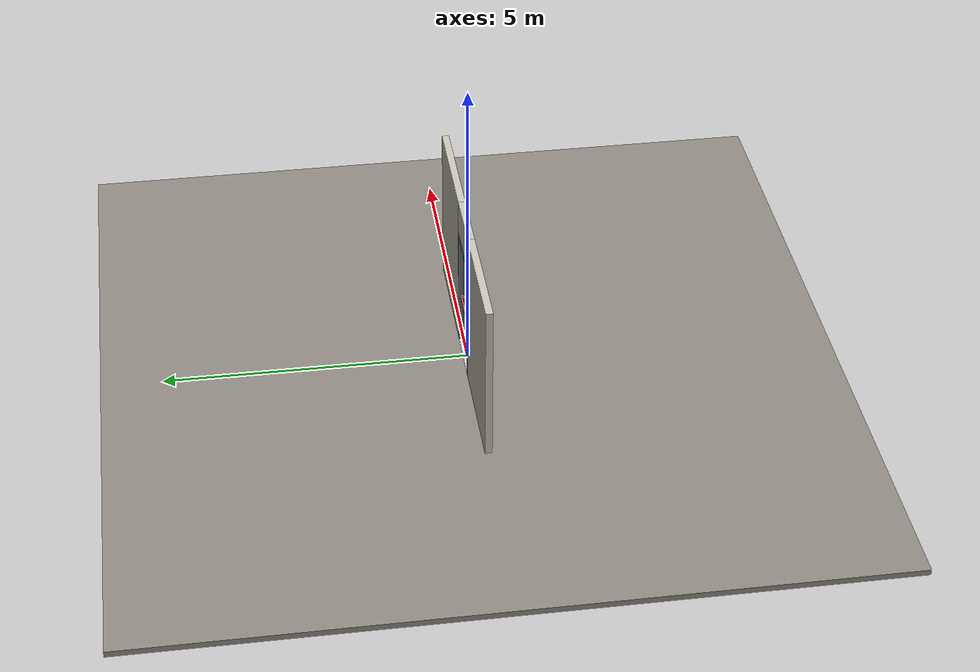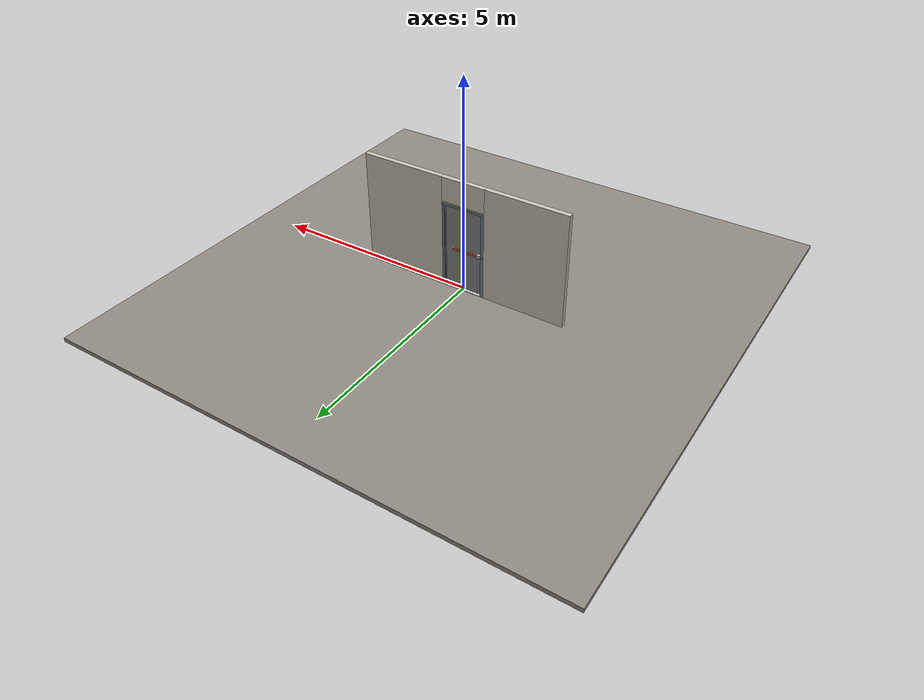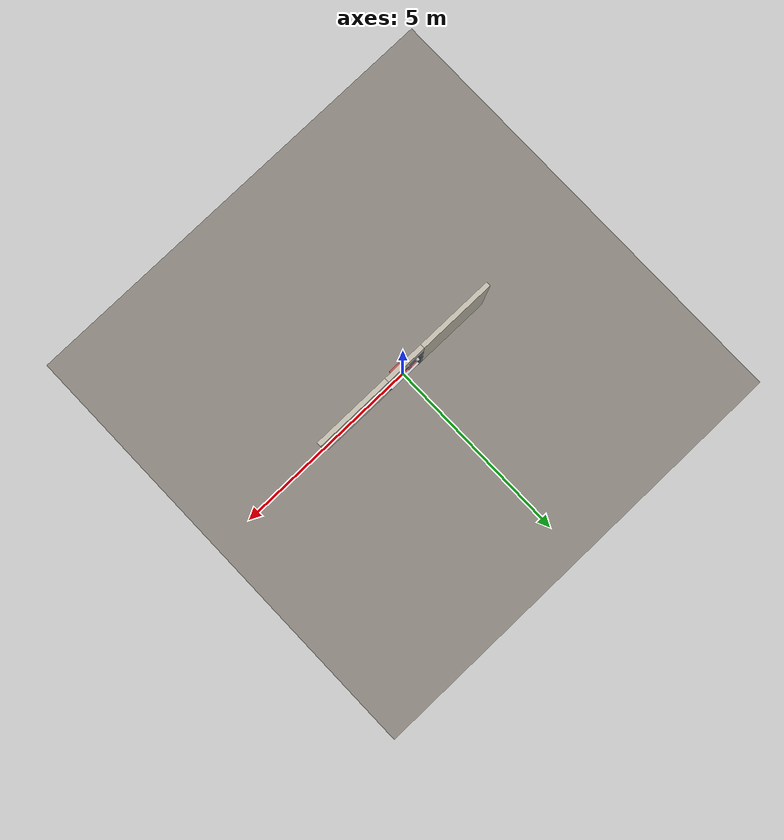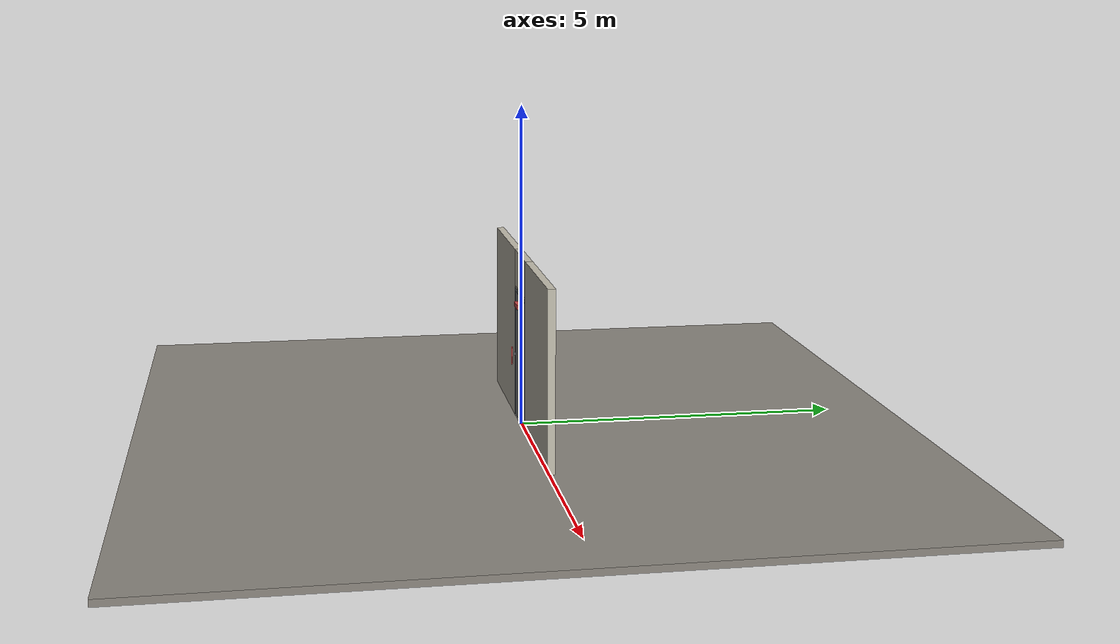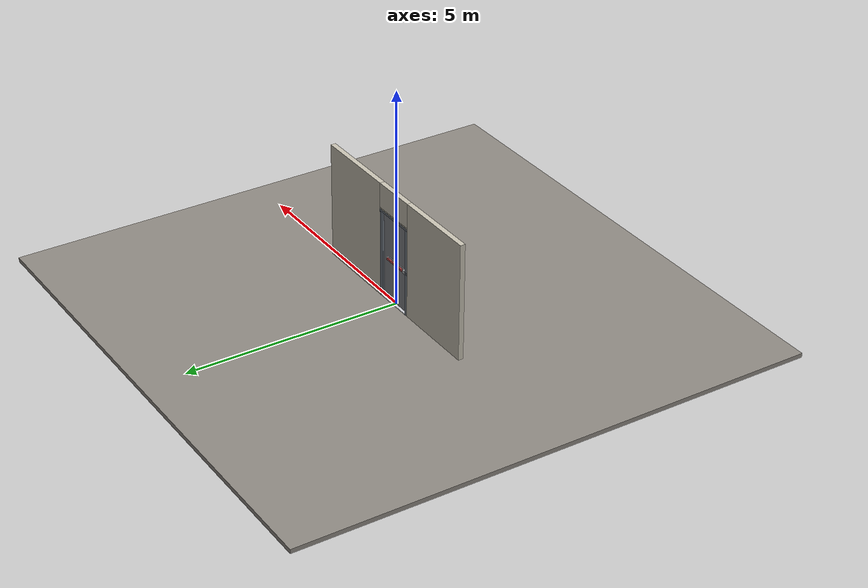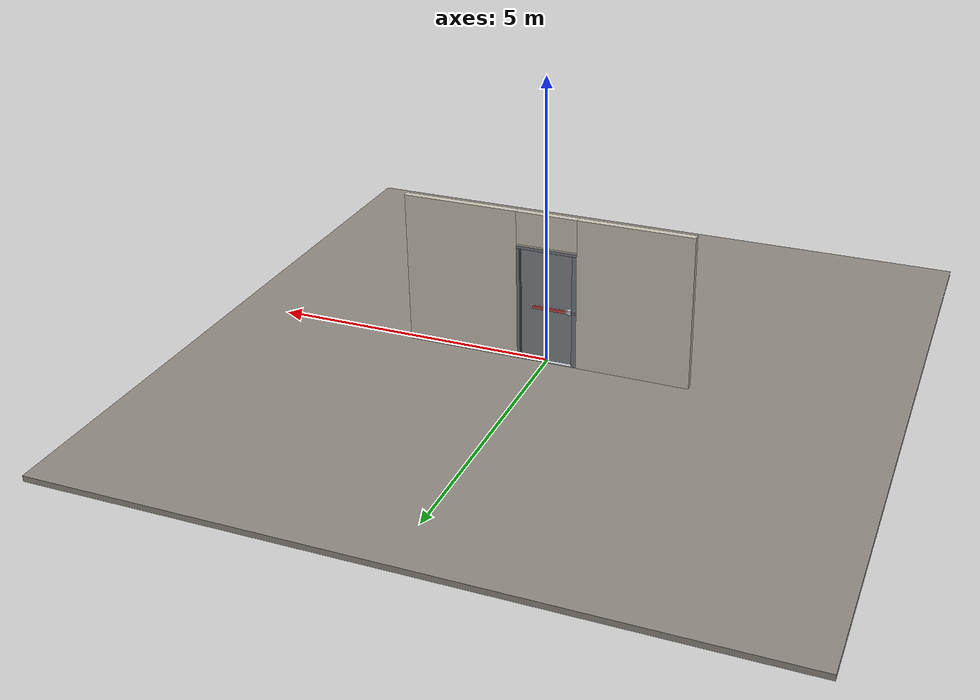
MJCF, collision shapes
<?xml version="1.0" ?>
<mujoco model="db0171_swing_single_simple">
  <compiler angle="radian" meshdir="../../hardware" texturedir="../../textures" autolimits="true" inertiafromgeom="false"/>
  <option timestep="0.002" integrator="implicitfast" cone="elliptic" impratio="10" noslip_iterations="3">
    <flag multiccd="enable"/>
  </option>
  <size memory="16M"/>
  <default>
    <geom condim="4" solref="0.005 1" solimp="0.95 0.99 0.001"/>
    <joint solreflimit="0.005 1" solimplimit="0.95 0.99 0.001"/>
    <tendon solreflimit="0.005 1"/>
    <equality solref="0.002 1"/>
  </default>
  <visual>
    <headlight ambient="0.4 0.4 0.4" diffuse="0.7 0.7 0.7" specular="0.2 0.2 0.2"/>
    <quality shadowsize="4096"/>
    <map znear="0.01" zfar="60"/>
  </visual>
  <asset>
    <mesh name="closer_body_fdc4667657" file="closer_body_fdc4667657.obj"/>
    <mesh name="hinge_e22b26c0c1" file="hinge_e22b26c0c1.obj"/>
    <mesh name="hinge_jamb_e1d088f8dc" file="hinge_jamb_e1d088f8dc.obj"/>
    <mesh name="pull_f8d79d6331" file="pull_f8d79d6331.obj"/>
    <mesh name="touchbar_pad_2729a067b4" file="touchbar_pad_2729a067b4.obj"/>
    <material name="mat_floor" rgba="0.55 0.53 0.5 1" specular="0.2" shininess="0.15" reflectance="0"/>
    <material name="mat_wall" rgba="0.78 0.76 0.7 1" specular="0.2" shininess="0.1" reflectance="0"/>
    <material name="mat_leaf" rgba="0.5 0.51 0.53 1" specular="0.2" shininess="0.51" reflectance="0"/>
    <material name="mat_leaf_louver" rgba="0.425 0.433 0.451 1" specular="0.2" shininess="0.4" reflectance="0"/>
    <material name="mat_hinge" rgba="0.65 0.66 0.68 1" specular="0.74" shininess="0.5" reflectance="0.36"/>
    <material name="mat_op_stainless" rgba="0.75 0.76 0.77 1" specular="0.8" shininess="0.65" reflectance="0.4"/>
    <material name="mat_bolt" rgba="0.75 0.76 0.77 1" specular="0.8" shininess="0.65" reflectance="0.4"/>
    <material name="mat_frame" rgba="0.45 0.48 0.52 1" specular="0.32" shininess="0.6" reflectance="0.08"/>
    <material name="mat_threshold" rgba="0.8 0.81 0.83 1" specular="0.8" shininess="0.6" reflectance="0.4"/>
    <material name="mat_closer" rgba="0.22 0.17 0.13 1" specular="0.8" shininess="0.6" reflectance="0.4"/>
    <material name="mat_exit_sign" rgba="0.85 0.1 0.1 1" specular="0.2" shininess="0.6" reflectance="0"/>
    <material name="mat_sign_bracket" rgba="0.8 0.81 0.83 1" specular="0.8" shininess="0.6" reflectance="0.4"/>
    <texture name="skybox" type="skybox" builtin="gradient" rgb1="0.6 0.7 0.85" rgb2="0.9 0.92 0.95" width="256" height="256"/>
  </asset>
  <worldbody>
    <light name="sun" pos="1.5 -2.5 4" dir="-0.3 0.5 -0.8" directional="true" diffuse="0.8 0.8 0.8" specular="0.3 0.3 0.3" castshadow="true"/>
    <light name="fill" pos="-1.5 2.5 3" dir="0.3 -0.5 -0.7" directional="true" diffuse="0.35 0.35 0.4" castshadow="false"/>
    <camera name="robot_view" pos="0 -2.513687 1.734312" xyaxes="1 0 0 0 0.26963 0.962964" fovy="52"/>
    <camera name="far_view" pos="0 2.570688 1.734312" xyaxes="-1 0 0 0 -0.26963 0.962964" fovy="52"/>
    <camera name="iso" pos="-1.932062 -2.106937 2.141063" xyaxes="0.741536 -0.670913 0 0.242917 0.268487 0.932151" fovy="46"/>
    <camera name="detail_handle" pos="-0.1865 -0.897 1.296" xyaxes="0.97561 0.219512 0 -0.070934 0.315262 0.94635" fovy="38"/>
    <geom name="floor" type="box" size="6 6 0.05" pos="0 0 -0.05" material="mat_floor" group="0" contype="1" conaffinity="1" friction="0.8 0.005 0.0001" density="2400"/>
    <geom name="wall_left" type="box" size="0.97975 0.0575 1.35" pos="-1.52025 0.0285 1.35" material="mat_wall" group="0" contype="1" conaffinity="1" friction="0.6 0.005 0.0001" density="800"/>
    <geom name="wall_right" type="box" size="0.99475 0.0575 1.35" pos="1.50525 0.0285 1.35" material="mat_wall" group="0" contype="1" conaffinity="1" friction="0.6 0.005 0.0001" density="800"/>
    <geom name="wall_header" type="box" size="0.5255 0.0575 0.2875" pos="-0.015 0.0285 2.4125" material="mat_wall" group="0" contype="1" conaffinity="1" friction="0.6 0.005 0.0001" density="800"/>
    <geom name="hinge_0_jamb" type="mesh" mesh="hinge_jamb_e1d088f8dc" pos="0.4575 -0.029 0.267" quat="0 0 1 0" material="mat_hinge" group="1" contype="0" conaffinity="0" density="7850"/>
    <geom name="hinge_1_jamb" type="mesh" mesh="hinge_jamb_e1d088f8dc" pos="0.4575 -0.029 1.029" quat="0 0 1 0" material="mat_hinge" group="1" contype="0" conaffinity="0" density="7850"/>
    <geom name="hinge_2_jamb" type="mesh" mesh="hinge_jamb_e1d088f8dc" pos="0.4575 -0.029 1.861" quat="0 0 1 0" material="mat_hinge" group="1" contype="0" conaffinity="0" density="7850"/>
    <geom name="jamb_hinge" type="box" size="0.025 0.0575 1.0225" pos="0.4855 0.0285 1.0225" material="mat_frame" group="0" contype="1" conaffinity="1" friction="0.6 0.005 0.0001" density="300"/>
    <geom name="strike_1016_wall_n" type="box" size="0.04 0.0155 0.02" pos="-0.5005 0.0705 1.016" material="mat_frame" group="0" contype="1" conaffinity="1" friction="0.6 0.005 0.0001" density="300"/>
    <geom name="strike_1016_wall_p" type="box" size="0.04 0.008 0.02" pos="-0.5005 0.025 1.016" material="mat_frame" group="0" contype="1" conaffinity="1" friction="0.6 0.005 0.0001" density="300"/>
    <geom name="strike_1016_ramp" type="box" size="0.04 0.034482 0.02" pos="-0.508781 -0.0044 1.016" quat="0.989198 0 0 -0.146587" material="mat_frame" group="0" contype="1" conaffinity="1" friction="0.12 0.005 0.0001" density="300"/>
    <geom name="strike_1016_back" type="box" size="0.0285 0.011 0.02" pos="-0.512 0.044 1.016" material="mat_frame" group="0" contype="1" conaffinity="1" friction="0.6 0.005 0.0001" density="300"/>
    <geom name="jamb_strike_0" type="box" size="0.04 0.0575 0.498" pos="-0.5005 0.0285 0.498" material="mat_frame" group="0" contype="1" conaffinity="1" friction="0.6 0.005 0.0001" density="300"/>
    <geom name="jamb_strike_1" type="box" size="0.04 0.0575 0.5045" pos="-0.5005 0.0285 1.5405" material="mat_frame" group="0" contype="1" conaffinity="1" friction="0.6 0.005 0.0001" density="300"/>
    <geom name="jamb_head" type="box" size="0.5255 0.0575 0.025" pos="-0.015 0.0285 2.07" material="mat_frame" group="0" contype="1" conaffinity="1" friction="0.6 0.005 0.0001" density="300"/>
    <geom name="head_stud" type="box" size="0.5255 0.0575 0.015" pos="-0.015 0.0285 2.11" material="mat_wall" group="0" contype="1" conaffinity="1" friction="0.6 0.005 0.0001" density="500"/>
    <geom name="stop_hinge" type="box" size="0.0055 0.016 1.0225" pos="0.455 0.0385 1.0225" material="mat_frame" group="0" contype="1" conaffinity="1" friction="0.6 0.005 0.0001" density="300"/>
    <geom name="stop_strike" type="box" size="0.0055 0.016 0.48425" pos="-0.455 0.0385 0.48425" material="mat_frame" group="0" contype="1" conaffinity="1" friction="0.6 0.005 0.0001" density="300"/>
    <geom name="stop_strike_1" type="box" size="0.0055 0.016 0.49075" pos="-0.455 0.0385 1.55425" material="mat_frame" group="0" contype="1" conaffinity="1" friction="0.6 0.005 0.0001" density="300"/>
    <geom name="stop_head" type="box" size="0.4605 0.016 0.0055" pos="0 0.0385 2.0395" material="mat_frame" group="0" contype="1" conaffinity="1" friction="0.6 0.005 0.0001" density="300"/>
    <geom name="threshold" type="box" size="0.5105 0.0575 0.0065" pos="0 0.0285 0.0065" material="mat_threshold" group="0" contype="1" conaffinity="1" friction="0.5 0.005 0.0001" density="2700"/>
    <site name="approach_point" pos="0 -1.5 0" quat="1 0 0 0" size="0.05" rgba="0.2 0.9 0.2 0.5" group="4"/>
    <site name="goal_point" pos="0 1.5 0" quat="1 0 0 0" size="0.05" rgba="0.2 0.9 0.2 0.5" group="4"/>
    <site name="door_plane_center" pos="0 0 1.0225" quat="1 0 0 0" size="0.02" rgba="0.2 0.9 0.2 0.5" group="4"/>
    <body name="leaf" pos="0.4605 0 0">
      <inertial pos="-0.432855 -0.016657 1.239628" mass="49.686444" quat="0.523291 -0.518617 -0.465688 -0.490243" diaginertia="3.132226114 19.695558223 22.718909474"/>
      <joint name="leaf_hinge" type="hinge" axis="0 0 1" pos="-0.003 -0.029 0" limited="true" range="0 1.570796" damping="12.25611" frictionloss="0.300785" stiffness="12.598705" springref="-1.600164" armature="0.02"/>
      <geom name="leaf_slab" type="box" size="0.457 0.022 1.012" pos="-0.46 0 1.029" material="mat_leaf" group="0" contype="1" conaffinity="1" friction="0.4 0.005 0.0001" density="1"/>
      <geom name="hinge_0" type="mesh" mesh="hinge_e22b26c0c1" pos="-0.003 -0.029 0.267" quat="0 0 1 0" material="mat_hinge" group="1" contype="0" conaffinity="0" density="7850"/>
      <geom name="hinge_1" type="mesh" mesh="hinge_e22b26c0c1" pos="-0.003 -0.029 1.029" quat="0 0 1 0" material="mat_hinge" group="1" contype="0" conaffinity="0" density="7850"/>
      <geom name="hinge_2" type="mesh" mesh="hinge_e22b26c0c1" pos="-0.003 -0.029 1.861" quat="0 0 1 0" material="mat_hinge" group="1" contype="0" conaffinity="0" density="7850"/>
      <geom name="leaf_exit_device_rail" type="box" size="0.31705 0.006 0.025" pos="-0.51995 0.028 1.016" material="mat_op_stainless" group="0" contype="1" conaffinity="1" friction="0.6 0.005 0.0001" density="3000"/>
      <geom name="leaf_exit_device_rail_end_n" type="box" size="0.01 0.0325 0.025" pos="-0.827 0.0545 1.016" material="mat_op_stainless" group="0" contype="1" conaffinity="1" friction="0.6 0.005 0.0001" density="3000"/>
      <geom name="leaf_exit_device_rail_end_p" type="box" size="0.01 0.0325 0.025" pos="-0.2129 0.0545 1.016" material="mat_op_stainless" group="0" contype="1" conaffinity="1" friction="0.6 0.005 0.0001" density="3000"/>
      <geom name="leaf_exit_device_case" type="box" size="0.034 0.034125 0.0375" pos="-0.871 0.056125 1.016" material="mat_op_stainless" group="0" contype="1" conaffinity="1" friction="0.6 0.005 0.0001" density="3000"/>
      <geom name="leaf_far_pull_n" type="mesh" mesh="pull_f8d79d6331" pos="-0.827 -0.022 1.016" quat="0 0 -0.707107 0.707107" material="mat_op_stainless" group="1" contype="0" conaffinity="0" density="3000"/>
      <geom name="leaf_far_pull_col_n" type="capsule" size="0.0125 0.13" pos="-0.827 -0.097 1.016" material="mat_op_stainless" group="3" contype="1" conaffinity="1" rgba="0.8 0.3 0.3 0.25" friction="0.7 0.01 0.0001" density="3000"/>
      <geom name="closer_body" type="mesh" mesh="closer_body_fdc4667657" pos="-0.3 -0.022 1.944" quat="0 0 -0.707107 0.707107" material="mat_closer" group="1" contype="0" conaffinity="0" density="2000"/>
      <geom name="closer_body_col" type="box" size="0.145 0.05 0.035" pos="-0.3 -0.072 1.944" material="mat_closer" group="3" contype="1" conaffinity="1" rgba="0.8 0.3 0.3 0.25" friction="0.6 0.005 0.0001" density="2000"/>
      <site name="leaf_far_pull_grip_n" pos="-0.827 -0.097 1.016" quat="1 0 0 0" size="0.012" rgba="0.2 0.9 0.2 0.5" group="4"/>
      <site name="leaf_edge_mid" pos="-0.917 0 1.012" quat="1 0 0 0" size="0.02" rgba="0.2 0.9 0.2 0.5" group="4"/>
      <body name="leaf_exit_device" pos="-0.51995 0.022 1.016">
        <inertial pos="0 0.05 0" mass="4.76361" quat="0 0 0.707107 0.707107" diaginertia="0.00116113 0.137653089 0.138099678"/>
        <joint name="leaf_exit_device_slide" type="slide" axis="0 -1 0" limited="true" range="0 0.016" damping="153.575154" frictionloss="0.5" stiffness="1200" springref="-0.015" armature="0.15"/>
        <geom name="leaf_exit_device_pad" type="mesh" mesh="touchbar_pad_2729a067b4" pos="0 0 0" quat="0 0 0.707107 0.707107" material="mat_op_stainless" group="1" contype="0" conaffinity="0" density="3000"/>
        <geom name="leaf_exit_device_pad_col" type="box" size="0.29405 0.015 0.0225" pos="0 0.05 0" material="mat_op_stainless" group="3" contype="1" conaffinity="1" rgba="0.8 0.3 0.3 0.25" friction="0.8 0.01 0.0001" density="3000"/>
        <site name="leaf_exit_device_push" pos="0 0.065 0" quat="1 0 0 0" size="0.015" rgba="0.2 0.9 0.2 0.5" group="4"/>
      </body>
      <body name="leaf_latch_bolt" pos="-0.917 0.044 1.016">
        <inertial pos="0.0055 0 0" mass="0.102826" quat="0.92388 0.382683 0 0" diaginertia="0.000004365 0.000018287 0.000018287"/>
        <joint name="leaf_latch_bolt_slide" type="slide" axis="1 0 0" limited="true" range="0 0.019" damping="2" frictionloss="0.3" stiffness="800" springref="-0.01" armature="0.1"/>
        <geom name="leaf_latch_bolt_capsule" type="capsule" size="0.0095 0.015" pos="0.0055 0 0" quat="0.707107 0 -0.707107 0" material="mat_bolt" group="0" contype="1" conaffinity="1" friction="0.2 0.005 0.0001" density="8500"/>
      </body>
    </body>
  </worldbody>
  <tendon>
    <fixed name="leaf_latch_bolt_coupling" limited="true" range="0 10">
      <joint joint="leaf_latch_bolt_slide" coef="1"/>
      <joint joint="leaf_exit_device_slide" coef="-1.357143"/>
    </fixed>
  </tendon>
  <sensor>
    <jointpos name="leaf_hinge_pos" joint="leaf_hinge"/>
    <jointvel name="leaf_hinge_vel" joint="leaf_hinge"/>
    <jointpos name="leaf_exit_device_slide_pos" joint="leaf_exit_device_slide"/>
    <jointvel name="leaf_exit_device_slide_vel" joint="leaf_exit_device_slide"/>
    <jointpos name="leaf_latch_bolt_slide_pos" joint="leaf_latch_bolt_slide"/>
    <jointvel name="leaf_latch_bolt_slide_vel" joint="leaf_latch_bolt_slide"/>
  </sensor>
</mujoco>
